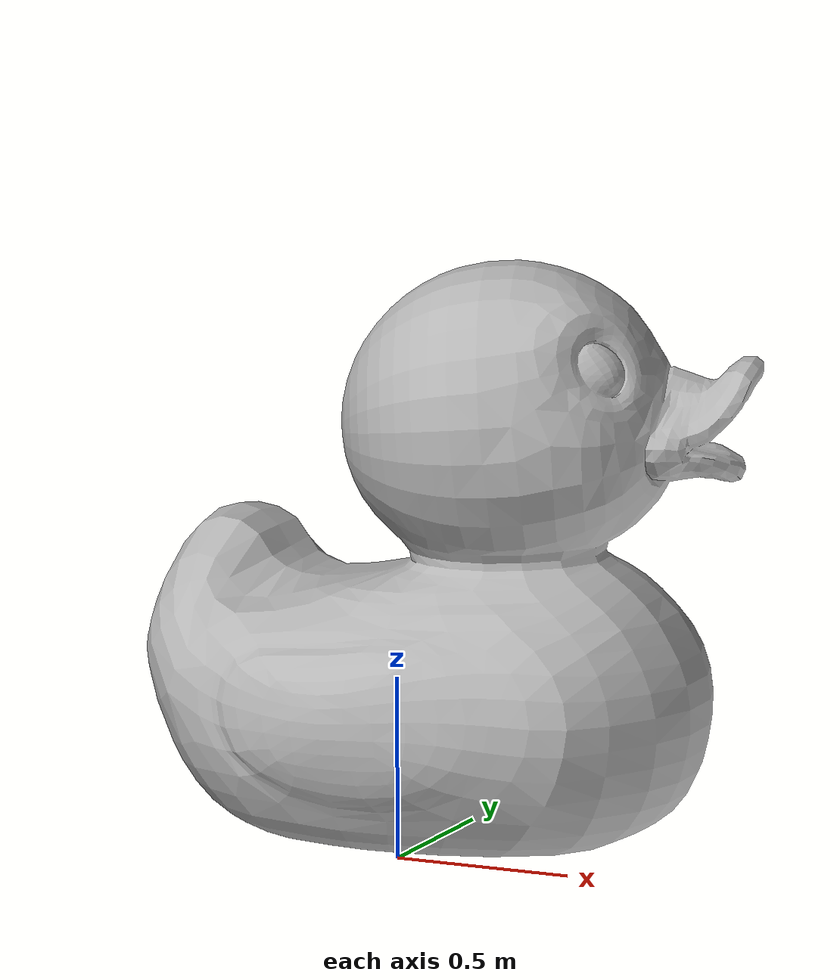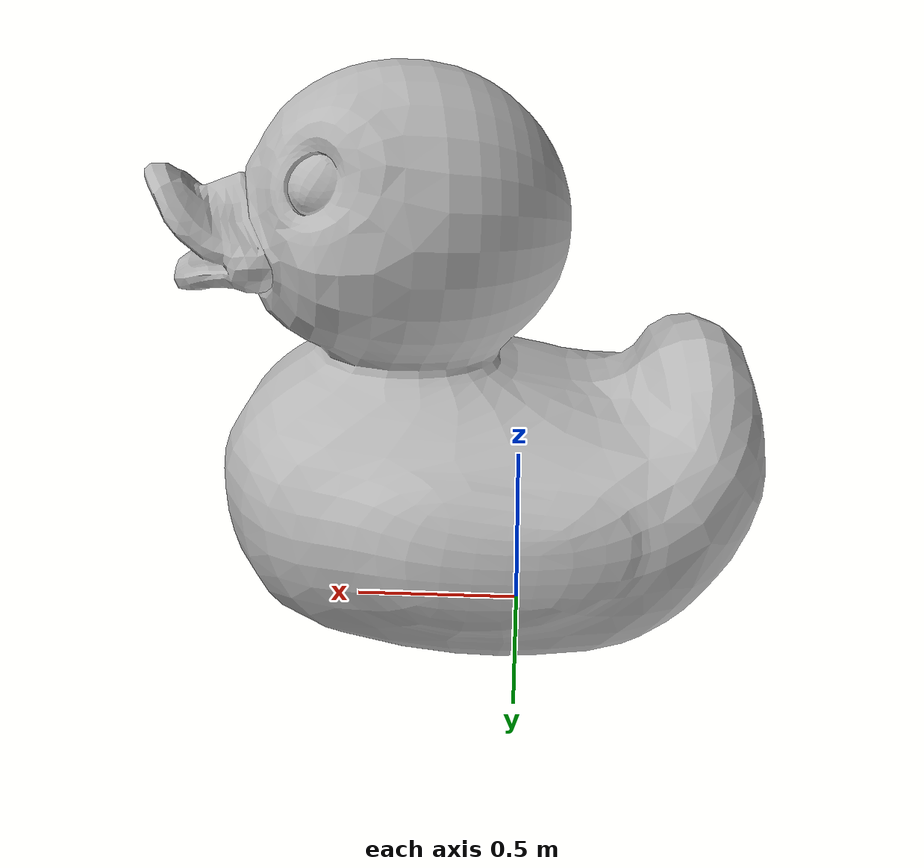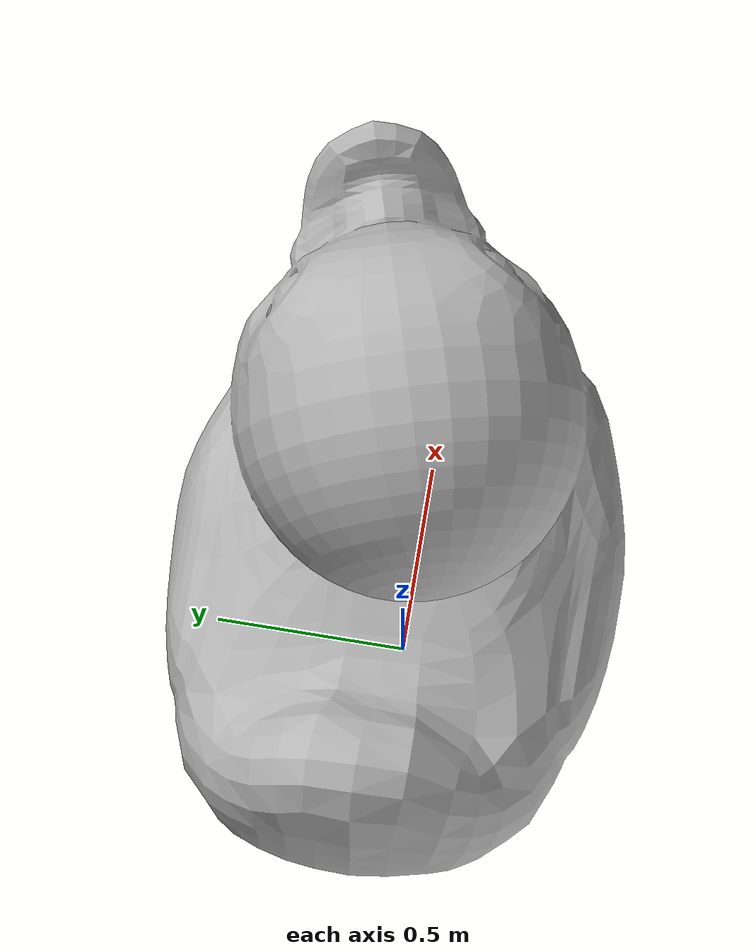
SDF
<?xml version='1.0'?>
<sdf version="1.5">

	<model name="duck">
		<pose> 0 0 0 0 0 0 </pose>
		<static> false </static>

		<link name="duck">
			<inertial>
				<mass>1.0</mass>
				<inertia>
					<ixx>0.01</ixx>
					<iyy>0.01</iyy>
					<izz>0.01</izz>
			    </inertia>
			</inertial>

			<collision name="collision">
				<pose> 0 0 0 1.5708 0 0 </pose>
				<geometry>
					<mesh><uri>file://duck/meshes/duck.dae</uri></mesh>
				</geometry>
			</collision>

			<visual name="visual">
				<pose> 0 0 0 1.5708 0 0 </pose>
				<geometry>
					<mesh><uri>file://duck/meshes/duck.dae</uri></mesh>
				</geometry>
			</visual>
		</link>

	</model>

</sdf>
